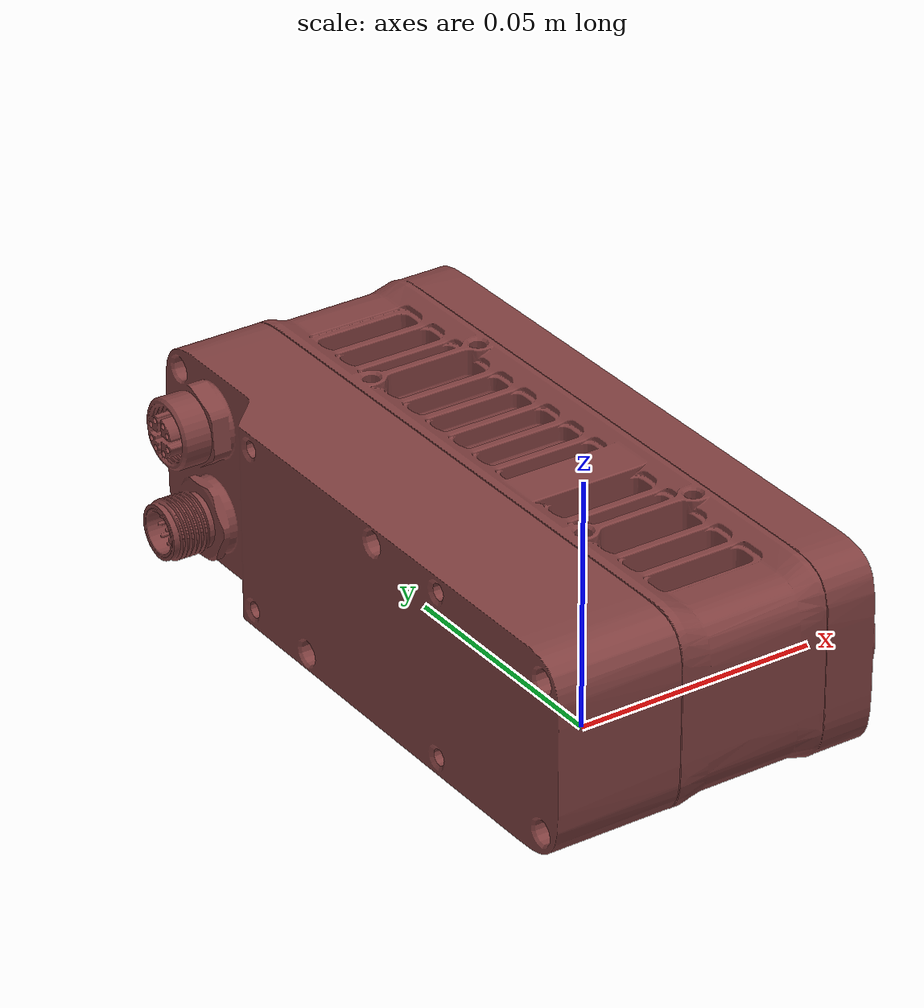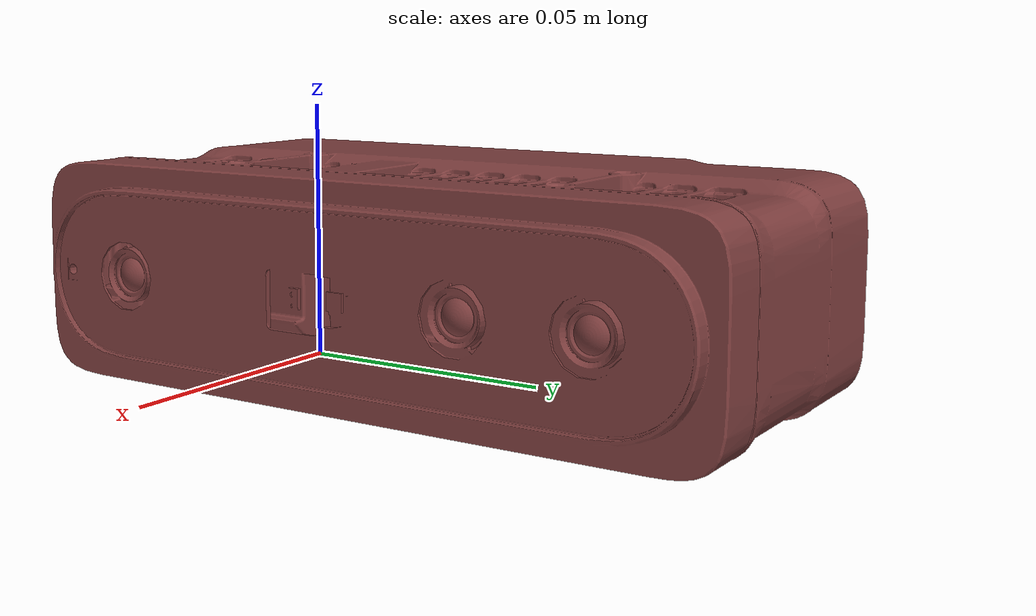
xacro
<?xml version="1.0" encoding="utf-8"?>
<robot xmlns:xacro="http://www.ros.org/wiki/xacro" name="gemini_435_Le">
  <xacro:property name="mesh_path" value="package://orbbec_camera/meshes/gemini435Le/" />

  <!--
    The root link owns the complete physical model. Sensor links below are
    coordinate frames only, so their geometry, collision, mass, and inertia
    are not counted repeatedly.
  -->
  <link name="camera_screw_frame">
    <inertial>
      <origin xyz="0.00362974814795868 0.0327239520253598 0.0201570762447024" rpy="0 0 0" />
      <mass value="0.52" />
      <inertia
        ixx="0.000996547989654272"
        ixy="-1.27347531187977E-05"
        ixz="-6.37274993760709E-08"
        iyy="0.000114258647753823"
        iyz="2.49203178977503E-06"
        izz="0.000945634655484896" />
    </inertial>
    <visual>
      <origin xyz="0 0 0" rpy="0 0 0" />
      <geometry>
        <mesh filename="${mesh_path}camera_screw_frame.STL" />
      </geometry>
      <material name="camera_body">
        <color rgba="0.501960784313725 0.250980392156863 0.250980392156863 1" />
      </material>
    </visual>
    <!-- Primitive collision avoids using a high-triangle-count dynamic mesh. -->
    <collision>
      <origin xyz="0.0024025 0.03375 0.0202" rpy="0 0 0" />
      <geometry>
        <box size="0.075505 0.1384 0.0404" />
      </geometry>
    </collision>
  </link>

  <link name="camera_link" />
  <joint name="camera_link_joint" type="fixed">
    <origin xyz="0.0354680400000002 0.0811997 0.0201999999999996" rpy="0 0 0" />
    <parent link="camera_screw_frame" />
    <child link="camera_link" />
  </joint>

  <link name="camera_depth_frame" />
  <joint name="camera_depth_joint" type="fixed">
    <origin xyz="0 0 0" rpy="0 0 0" />
    <parent link="camera_link" />
    <child link="camera_depth_frame" />
  </joint>

  <link name="camera_IMU_frame" />
  <joint name="camera_IMU_joint" type="fixed">
    <origin xyz="-0.0550580400000001 -0.0152696999999998 9.99999999999141E-05" rpy="0 0 0" />
    <parent link="camera_depth_frame" />
    <child link="camera_IMU_frame" />
  </joint>

  <link name="camera_color_frame" />
  <joint name="camera_color_joint" type="fixed">
    <origin xyz="0 -0.0237497 0" rpy="0 0 0" />
    <parent link="camera_depth_frame" />
    <child link="camera_color_frame" />
  </joint>

  <link name="camera_color_optical_frame" />
  <joint name="camera_color_optical_joint" type="fixed">
    <origin xyz="0 0 0" rpy="-1.57079632679489 0 -1.5707963267949" />
    <parent link="camera_color_frame" />
    <child link="camera_color_optical_frame" />
  </joint>

  <link name="camera_left_ir_frame" />
  <joint name="camera_left_ir_joint" type="fixed">
    <origin xyz="0 0 0" rpy="0 0 0" />
    <parent link="camera_depth_frame" />
    <child link="camera_left_ir_frame" />
  </joint>

  <link name="camera_left_ir_optical_frame" />
  <joint name="camera_left_ir_optical_joint" type="fixed">
    <origin xyz="0 0 0" rpy="-1.57079632679489 0 -1.5707963267949" />
    <parent link="camera_left_ir_frame" />
    <child link="camera_left_ir_optical_frame" />
  </joint>

  <link name="camera_right_ir_frame" />
  <joint name="camera_right_ir_joint" type="fixed">
    <origin xyz="0 -0.0949976 0" rpy="0 0 0" />
    <parent link="camera_depth_frame" />
    <child link="camera_right_ir_frame" />
  </joint>

  <link name="camera_right_ir_optical_frame" />
  <joint name="camera_right_ir_optical_joint" type="fixed">
    <origin xyz="0 0 0" rpy="-1.57079632679489 0 -1.5707963267949" />
    <parent link="camera_right_ir_frame" />
    <child link="camera_right_ir_optical_frame" />
  </joint>

  <link name="camera_depth_optical_frame" />
  <joint name="camera_depth_optical_joint" type="fixed">
    <origin xyz="0 0 0" rpy="-1.57079632679489 0 -1.5707963267949" />
    <parent link="camera_depth_frame" />
    <child link="camera_depth_optical_frame" />
  </joint>
</robot>
